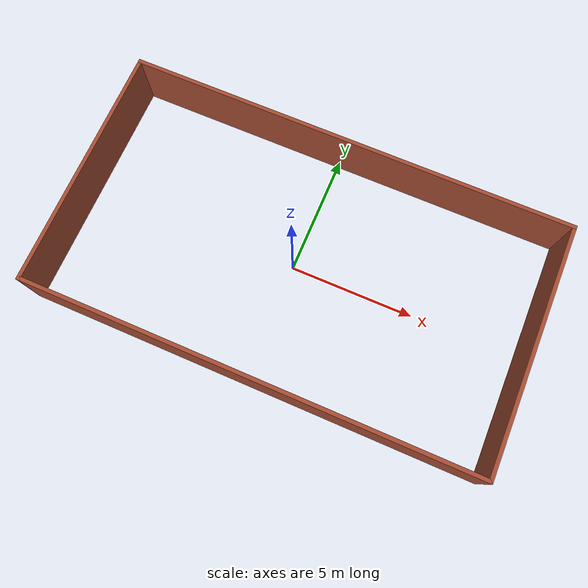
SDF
<?xml version='1.0'?>
<sdf version='1.7'>
  <model name='my_walls'>
    <pose>0.301561 -0.012529 0 0 -0 0</pose>
    <link name='Wall_3'>
      <collision name='Wall_3_Collision'>
        <geometry>
          <box>
            <size>9.8372 0.15 2.5</size>
          </box>
        </geometry>
        <pose>0 0 1.25 0 -0 0</pose>
      </collision>
      <visual name='Wall_3_Visual'>
        <pose>0 0 1.25 0 -0 0</pose>
        <geometry>
          <box>
            <size>9.8372 0.15 2.5</size>
          </box>
        </geometry>
        <material>
          <script>
            <uri>file://media/materials/scripts/gazebo.material</uri>
            <name>Gazebo/Bricks</name>
          </script>
          <ambient>1 1 1 1</ambient>
        </material>
        <meta>
          <layer>0</layer>
        </meta>
      </visual>
      <pose>-8.925 0 0 0 -0 -1.5708</pose>
    </link>
    <link name='Wall_4'>
      <collision name='Wall_4_Collision'>
        <geometry>
          <box>
            <size>18 0.15 2.5</size>
          </box>
        </geometry>
        <pose>0 0 1.25 0 -0 0</pose>
      </collision>
      <visual name='Wall_4_Visual'>
        <pose>0 0 1.25 0 -0 0</pose>
        <geometry>
          <box>
            <size>18 0.15 2.5</size>
          </box>
        </geometry>
        <material>
          <script>
            <uri>file://media/materials/scripts/gazebo.material</uri>
            <name>Gazebo/Bricks</name>
          </script>
          <ambient>1 1 1 1</ambient>
        </material>
        <meta>
          <layer>0</layer>
        </meta>
      </visual>
      <pose>-0 -4.8436 0 0 -0 0</pose>
    </link>
    <link name='Wall_5'>
      <collision name='Wall_5_Collision'>
        <geometry>
          <box>
            <size>9.8372 0.15 2.5</size>
          </box>
        </geometry>
        <pose>0 0 1.25 0 -0 0</pose>
      </collision>
      <visual name='Wall_5_Visual'>
        <pose>0 0 1.25 0 -0 0</pose>
        <geometry>
          <box>
            <size>9.8372 0.15 2.5</size>
          </box>
        </geometry>
        <material>
          <script>
            <uri>file://media/materials/scripts/gazebo.material</uri>
            <name>Gazebo/Bricks</name>
          </script>
          <ambient>1 1 1 1</ambient>
        </material>
        <meta>
          <layer>0</layer>
        </meta>
      </visual>
      <pose>8.925 0 0 0 -0 1.5708</pose>
    </link>
    <link name='Wall_6'>
      <collision name='Wall_6_Collision'>
        <geometry>
          <box>
            <size>18 0.15 2.5</size>
          </box>
        </geometry>
        <pose>0 0 1.25 0 -0 0</pose>
      </collision>
      <visual name='Wall_6_Visual'>
        <pose>0 0 1.25 0 -0 0</pose>
        <geometry>
          <box>
            <size>18 0.15 2.5</size>
          </box>
        </geometry>
        <material>
          <script>
            <uri>file://media/materials/scripts/gazebo.material</uri>
            <name>Gazebo/Bricks</name>
          </script>
          <ambient>1 1 1 1</ambient>
        </material>
        <meta>
          <layer>0</layer>
        </meta>
      </visual>
      <pose>-0 4.8436 0 0 -0 3.14159</pose>
    </link>
    <static>1</static>
  </model>
</sdf>
